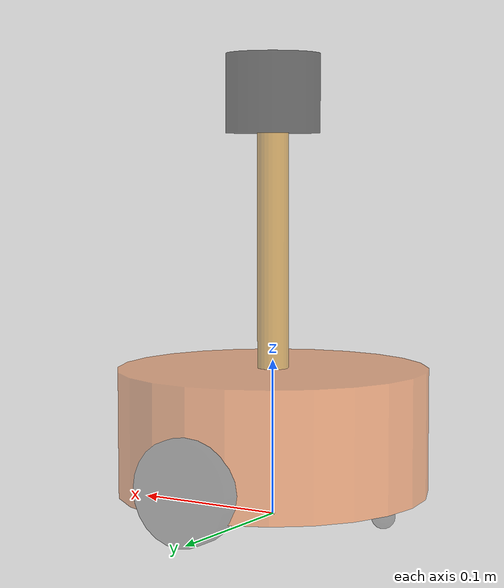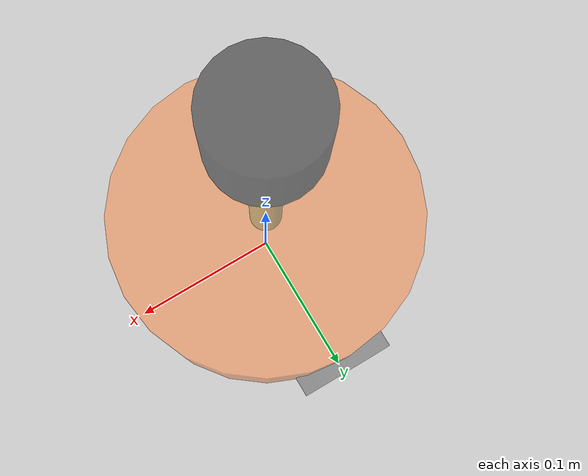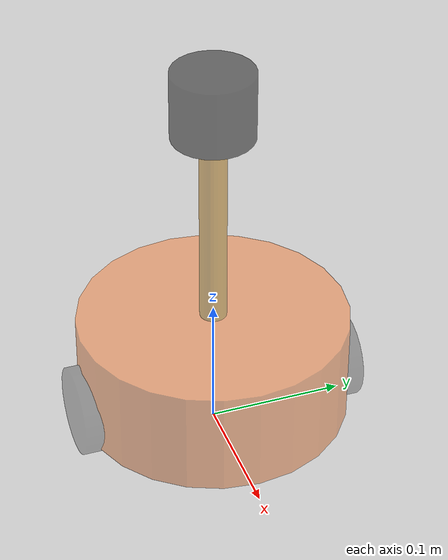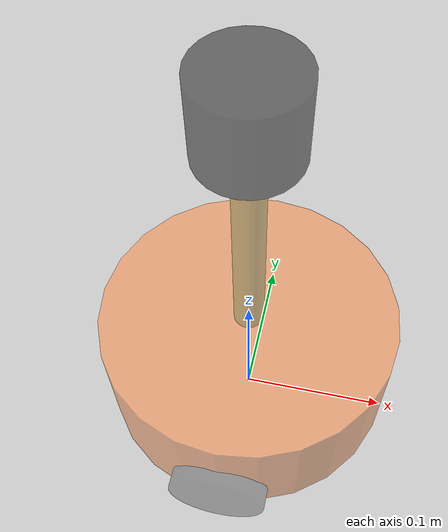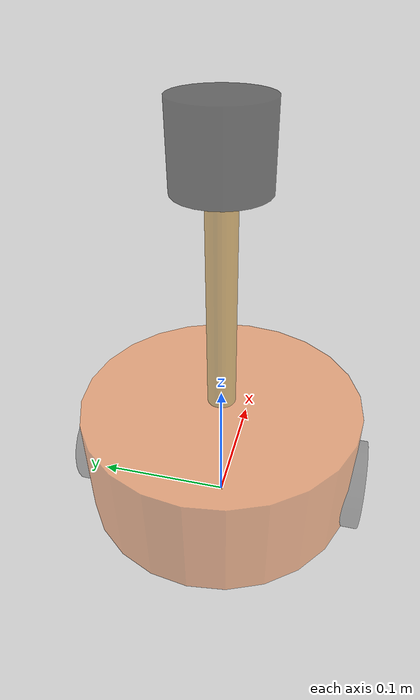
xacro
<?xml version="1.0"?>

<robot name="robot" xmlns:xacro="http://wiki.ros.org/xacro">

    <xacro:include filename="robot_base.urdf.xacro" />
    <!-- 还没有上相机-->
    <xacro:include filename="robot_laser.urdf.xacro" />

</robot>

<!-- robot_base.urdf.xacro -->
<robot name="robot" xmlns:xacro="http://wiki.ros.org/xacro">

    <xacro:property name="footprint_radius" value="0.001" />
    <link name="base_footprint">
        <visual>
            <geometry>
                <sphere radius="${footprint_radius}" />
            </geometry>
        </visual>
    </link>

    <xacro:property name="base_radius" value="0.1" />
    <xacro:property name="base_length" value="0.08" />
    <xacro:property name="lidi" value="0.015" />
    <xacro:property name="base_joint_z" value="${base_length / 2 + lidi}" />
    <link name="base_link">
        <visual>
            <geometry>
                <cylinder radius="0.1" length="0.08" />
            </geometry>

            <origin xyz="0 0 0" rpy="0 0 0" />

            <material name="baselink_color">
                <color rgba="1.0 0.5 0.2 0.5" />
            </material>
        </visual>

    </link>

    <joint name="link2footprint" type="fixed">
        <parent link="base_footprint"  />
        <child link="base_link" />
        <origin xyz="0 0 0.055" rpy="0 0 0" />
    </joint>

    <xacro:property name="wheel_radius" value="0.0325" />
    <xacro:property name="wheel_length" value="0.015" />
    <xacro:property name="PI" value="3.1415927" />
    <xacro:property name="wheel_joint_z" value="${(base_length / 2 + lidi - wheel_radius) * -1}" />

    <xacro:macro name="wheel_func" params="wheel_name flag">

        <link name="${wheel_name}_wheel">
            <visual>
                <geometry>
                    <cylinder radius="${wheel_radius}" length="${wheel_length}" />
                </geometry>

                <origin xyz="0 0 0" rpy="${PI / 2} 0 0" />

                <material name="wheel_color">
                    <color rgba="0 0 0 0.3" />
                </material>
            </visual>

        </link>

        <joint name="${wheel_name}2link" type="continuous">
            <parent link="base_link"  />
            <child link="${wheel_name}_wheel" />

            <origin xyz="0 ${0.1 * flag} ${wheel_joint_z}" rpy="0 0 0" />
            <axis xyz="0 1 0" />
        </joint>

    </xacro:macro>

    <xacro:wheel_func wheel_name="left" flag="1" />
    <xacro:wheel_func wheel_name="right" flag="-1" />

    <xacro:property name="small_wheel_radius" value="0.0075" />
    <xacro:property name="small_joint_z" value="${(base_length / 2 + lidi - small_wheel_radius) * -1}" />

    <xacro:macro name="small_wheel_func" params="small_wheel_name flag">
        <link name="${small_wheel_name}_wheel">
            <visual>
                <geometry>
                    <sphere radius="${small_wheel_radius}" />
                </geometry>

                <origin xyz="0 0 0" rpy="0 0 0" />

                <material name="wheel_color">
                    <color rgba="0 0 0 0.3" />
                </material>
            </visual>

        </link>

        <joint name="${small_wheel_name}2link" type="continuous">
            <parent link="base_link"  />
            <child link="${small_wheel_name}_wheel" />

            <origin xyz="${0.08 * flag} 0 ${small_joint_z}" rpy="0 0 0" />
            <axis xyz="0 1 0" />
        </joint>

    </xacro:macro >
    <xacro:small_wheel_func small_wheel_name="front" flag="1"/>
    <xacro:small_wheel_func small_wheel_name="back" flag="-1"/>

</robot>

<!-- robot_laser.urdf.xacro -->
<robot name="robot" xmlns:xacro="http://wiki.ros.org/xacro">

    <xacro:property name="support_radius" value="0.01" />
    <xacro:property name="support_length" value="0.15" />

    <xacro:property name="laser_radius" value="0.03" />
    <xacro:property name="laser_length" value="0.05" />

    <xacro:property name="joint_support_x" value="0" />
    <xacro:property name="joint_support_y" value="0" />
    <xacro:property name="joint_support_z" value="${base_length / 2 + support_length / 2}" />

    <xacro:property name="joint_laser_x" value="0" />
    <xacro:property name="joint_laser_y" value="0" />
    <xacro:property name="joint_laser_z" value="${support_length / 2 + laser_length / 2}" />

    <link name="support">
        <visual>
            <geometry>
                <cylinder radius="${support_radius}" length="${support_length}" />
            </geometry>
            <material name="yellow">
                <color rgba="0.8 0.5 0.0 0.5" />
            </material>
        </visual>

    </link>

    <joint name="support2base" type="fixed">
        <parent link="base_link" />
        <child link="support"/>
        <origin xyz="${joint_support_x} ${joint_support_y} ${joint_support_z}" rpy="0 0 0" />
    </joint>
    <link name="laser">
        <visual>
            <geometry>
                <cylinder radius="${laser_radius}" length="${laser_length}" />
            </geometry>
            <material name="black">
                <color rgba="0 0 0 0.5" />
            </material>
        </visual>

    </link>

    <joint name="laser2support" type="fixed">
        <parent link="support" />
        <child link="laser"/>
        <origin xyz="${joint_laser_x} ${joint_laser_y} ${joint_laser_z}" rpy="0 0 0" />
    </joint>
</robot>
